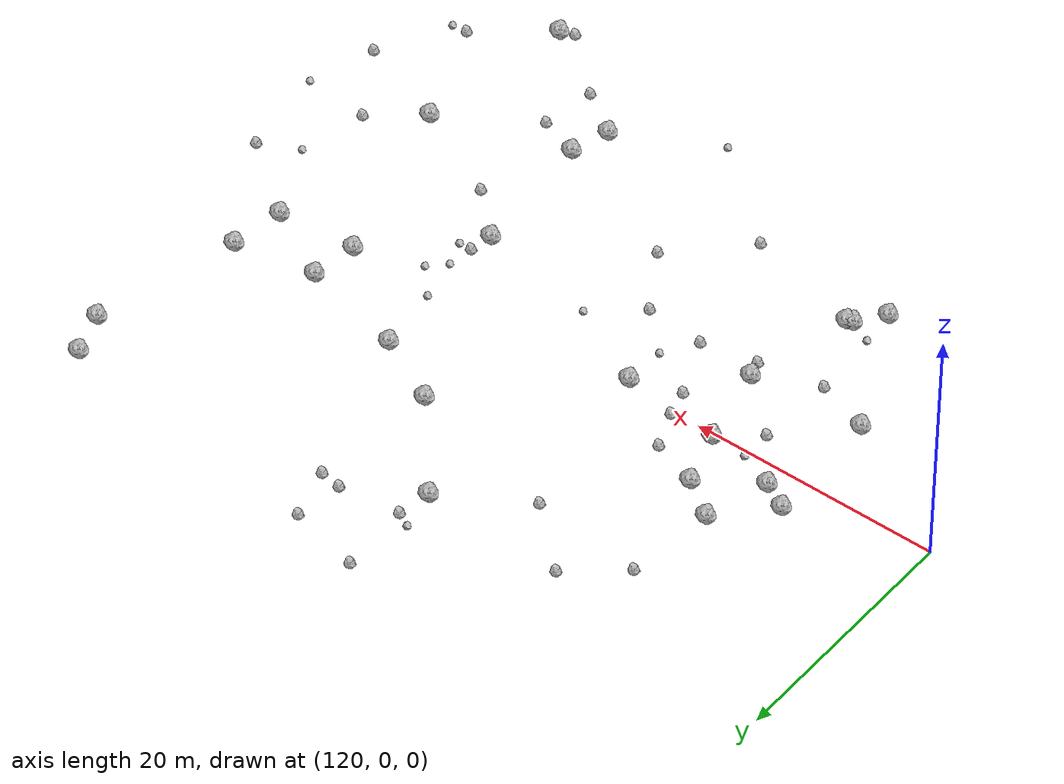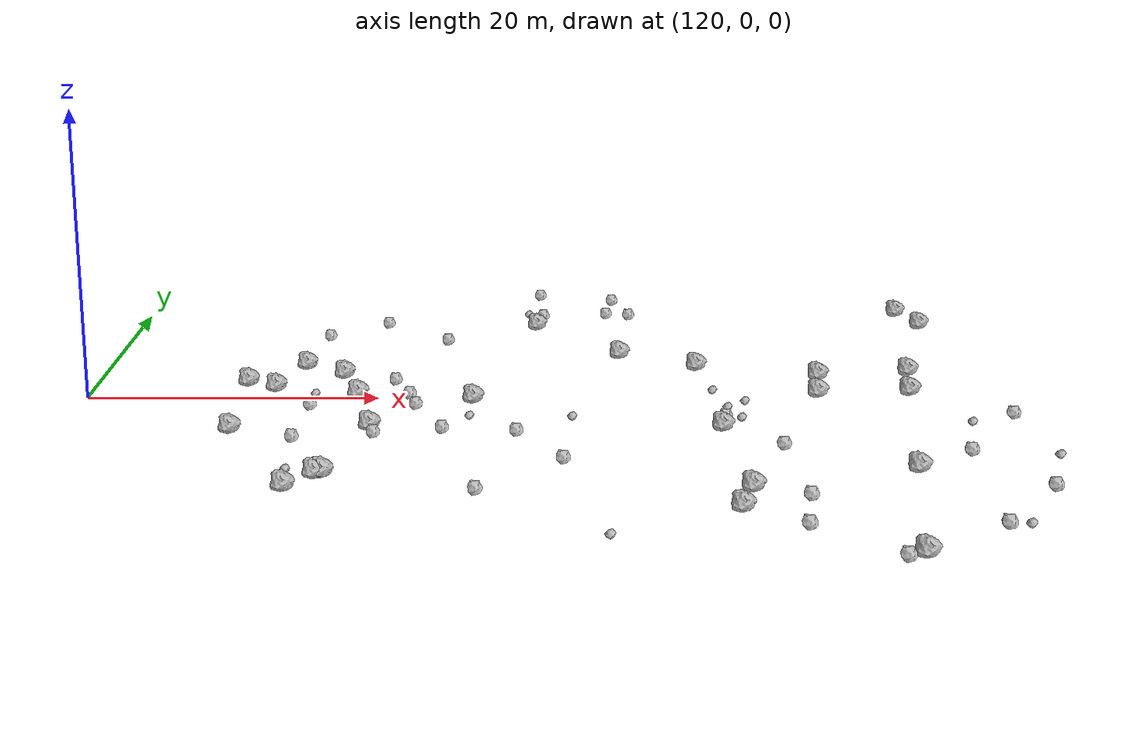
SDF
<sdf version="1.6">
 <world name="default">
  <include><uri>model://sun</uri></include>
  <model name="rock1_4_2">
   <include><uri>model://rock1</uri><pose>174.72796225187184 -13.37454622201346 0.5 0 0 0</pose></include>
  </model>
  <model name="rock1_4_3">
   <include><uri>model://rock1</uri><pose>137.99741705897068 -14.68515742351272 0.5 0 0 0</pose></include>
  </model>
  <model name="rock1_4_4">
   <include><uri>model://rock1</uri><pose>135.96340607001915 -16.979909476129162 0.5 0 0 0</pose></include>
  </model>
  <model name="rock1_4_5">
   <include><uri>model://rock1</uri><pose>180.12779075254042 17.787749142297933 0.5 0 0 0</pose></include>
  </model>
  <model name="rock1_4_6">
   <include><uri>model://rock1</uri><pose>139.99950422634282 -6.034107385449488 0.5 0 0 0</pose></include>
  </model>
  <model name="rock1_4_7">
   <include><uri>model://rock1</uri><pose>132.70091235716566 1.8687132217531186 0.5 0 0 0</pose></include>
  </model>
  <model name="rock1_4_8">
   <include><uri>model://rock1</uri><pose>163.19609496778997 -5.942205077800914 0.5 0 0 0</pose></include>
  </model>
  <model name="rock1_4_9">
   <include><uri>model://rock1</uri><pose>178.8681751186034 21.264221223056936 0.5 0 0 0</pose></include>
  </model>
  <model name="rock1_4_10">
   <include><uri>model://rock1</uri><pose>163.3130412980235 -19.912867471452074 0.5 0 0 0</pose></include>
  </model>
  <model name="rock1_4_11">
   <include><uri>model://rock1</uri><pose>146.52593700894485 -0.46272523927311227 0.5 0 0 0</pose></include>
  </model>
  <model name="rock1_4_12">
   <include><uri>model://rock1</uri><pose>164.19683045863545 -16.722089563151513 0.5 0 0 0</pose></include>
  </model>
  <model name="rock1_4_13">
   <include><uri>model://rock1</uri><pose>177.26609651164796 5.966276226220316 0.5 0 0 0</pose></include>
  </model>
  <model name="rock1_4_14">
   <include><uri>model://rock1</uri><pose>176.66705760819622 1.5397398195762655 0.5 0 0 0</pose></include>
  </model>
  <model name="rock1_4_15">
   <include><uri>model://rock1</uri><pose>130.5792158043728 3.072307980433351 0.5 0 0 0</pose></include>
  </model>
  <model name="rock1_4_16">
   <include><uri>model://rock1</uri><pose>172.84922584185244 -26.46048246299082 0.5 0 0 0</pose></include>
  </model>
  <model name="rock1_4_17">
   <include><uri>model://rock1</uri><pose>134.1798555428246 6.969557832239836 0.5 0 0 0</pose></include>
  </model>
  <model name="rock1_4_18">
   <include><uri>model://rock1</uri><pose>162.21092913462036 7.02297387385169 0.5 0 0 0</pose></include>
  </model>
  <model name="rock1_4_19">
   <include><uri>model://rock1</uri><pose>170.25737900658913 1.0644551960063033 0.5 0 0 0</pose></include>
  </model>
  <model name="rock1_4_20">
   <include><uri>model://rock1</uri><pose>156.74336326577998 9.83750510490249 0.5 0 0 0</pose></include>
  </model>
  <model name="rock1_4_21">
   <include><uri>model://rock1</uri><pose>138.54703948605626 0.45859907314950377 0.5 0 0 0</pose></include>
  </model>
  <model name="rock1_4_22">
   <include><uri>model://rock1</uri><pose>130.9439692509423 -6.748517168649656 0.5 0 0 0</pose></include>
  </model>
  <model name="rock1_4_23">
   <include><uri>model://rock1</uri><pose>170.71296210360538 4.88119007069875 0.5 0 0 0</pose></include>
  </model>
  <model name="rock1_4_24">
   <include><uri>model://rock1</uri><pose>137.11283432607345 4.8868493648414315 0.5 0 0 0</pose></include>
  </model>
  <model name="rock1_4_25">
   <include><uri>model://rock1</uri><pose>150.55889379668633 17.138938352190948 0.5 0 0 0</pose></include>
  </model>
  <model name="rock1_4_26">
   <include><uri>model://rock1</uri><pose>137.5640831487776 -14.840346189611616 0.5 0 0 0</pose></include>
  </model>
  <model name="rock2_4_0">
   <include><uri>model://rock2</uri><pose>171.68059242774135 -26.928359029467067 0.3 0 0 0</pose></include>
  </model>
  <model name="rock2_4_1">
   <include><uri>model://rock2</uri><pose>135.23349844203062 -8.330447450635766 0.3 0 0 0</pose></include>
  </model>
  <model name="rock2_4_2">
   <include><uri>model://rock2</uri><pose>135.55130767712464 -1.9922295160049224 0.3 0 0 0</pose></include>
  </model>
  <model name="rock2_4_3">
   <include><uri>model://rock2</uri><pose>150.9749337044749 19.784778135873395 0.3 0 0 0</pose></include>
  </model>
  <model name="rock2_4_4">
   <include><uri>model://rock2</uri><pose>140.3755160796421 -7.425867805325755 0.3 0 0 0</pose></include>
  </model>
  <model name="rock2_4_5">
   <include><uri>model://rock2</uri><pose>147.50459690632027 -17.367284299230782 0.3 0 0 0</pose></include>
  </model>
  <model name="rock2_4_6">
   <include><uri>model://rock2</uri><pose>142.10729246340236 0.43945213385795867 0.3 0 0 0</pose></include>
  </model>
  <model name="rock2_4_7">
   <include><uri>model://rock2</uri><pose>167.4764438911154 -18.00807113648268 0.3 0 0 0</pose></include>
  </model>
  <model name="rock2_4_8">
   <include><uri>model://rock2</uri><pose>140.86216799183177 3.477571544018687 0.3 0 0 0</pose></include>
  </model>
  <model name="rock2_4_9">
   <include><uri>model://rock2</uri><pose>144.78426021790824 -6.542635286201069 0.3 0 0 0</pose></include>
  </model>
  <model name="rock2_4_10">
   <include><uri>model://rock2</uri><pose>166.77850958897537 -9.401992478647085 0.3 0 0 0</pose></include>
  </model>
  <model name="rock2_4_11">
   <include><uri>model://rock2</uri><pose>166.84536680174753 -22.460431260585747 0.3 0 0 0</pose></include>
  </model>
  <model name="rock2_4_12">
   <include><uri>model://rock2</uri><pose>155.88846162706363 20.371188450172838 0.3 0 0 0</pose></include>
  </model>
  <model name="rock2_4_13">
   <include><uri>model://rock2</uri><pose>149.64838815040275 -7.019630102859743 0.3 0 0 0</pose></include>
  </model>
  <model name="rock2_4_14">
   <include><uri>model://rock2</uri><pose>178.22416379686962 -22.24508519599063 0.3 0 0 0</pose></include>
  </model>
  <model name="rock2_4_15">
   <include><uri>model://rock2</uri><pose>134.93526170054645 14.11634324964082 0.3 0 0 0</pose></include>
  </model>
  <model name="rock2_4_16">
   <include><uri>model://rock2</uri><pose>142.6897703744374 -1.7444136172858435 0.3 0 0 0</pose></include>
  </model>
  <model name="rock2_4_17">
   <include><uri>model://rock2</uri><pose>163.47257502938746 -4.062845632495527 0.3 0 0 0</pose></include>
  </model>
  <model name="rock2_4_18">
   <include><uri>model://rock2</uri><pose>152.74242185020591 -12.04927359260088 0.3 0 0 0</pose></include>
  </model>
  <model name="rock2_4_19">
   <include><uri>model://rock2</uri><pose>156.40594747712615 24.209052371303727 0.3 0 0 0</pose></include>
  </model>
  <model name="rock2_4_20">
   <include><uri>model://rock2</uri><pose>182.73605307966125 -3.2335240905721783 0.3 0 0 0</pose></include>
  </model>
  <model name="rock2_4_21">
   <include><uri>model://rock2</uri><pose>143.92994381938576 13.082396783803155 0.3 0 0 0</pose></include>
  </model>
  <model name="rock2_4_22">
   <include><uri>model://rock2</uri><pose>182.31892529170125 -16.370379387840508 0.3 0 0 0</pose></include>
  </model>
  <model name="rock2_4_23">
   <include><uri>model://rock2</uri><pose>150.6503642135463 25.644924085824144 0.3 0 0 0</pose></include>
  </model>
  <model name="rock2_4_24">
   <include><uri>model://rock2</uri><pose>178.52036581983043 -10.33091556134919 0.3 0 0 0</pose></include>
  </model>
  <model name="rock2_4_25">
   <include><uri>model://rock2</uri><pose>157.6403357710061 20.060364081271388 0.3 0 0 0</pose></include>
  </model>
  <model name="rock2_4_26">
   <include><uri>model://rock2</uri><pose>139.05681341679423 17.525498002020143 0.3 0 0 0</pose></include>
  </model>
  <model name="rock3_4_0">
   <include><uri>model://rock3</uri><pose>183.93845805722805 -10.972053733180015 0.2 0 0 0</pose></include>
  </model>
  <model name="rock3_4_1">
   <include><uri>model://rock3</uri><pose>164.53724188875063 -4.154073957486723 0.2 0 0 0</pose></include>
  </model>
  <model name="rock3_4_2">
   <include><uri>model://rock3</uri><pose>135.63912385100642 -14.079409849359939 0.2 0 0 0</pose></include>
  </model>
  <model name="rock3_4_3">
   <include><uri>model://rock3</uri><pose>179.68518276107417 -4.844600958581246 0.2 0 0 0</pose></include>
  </model>
  <model name="rock3_4_4">
   <include><uri>model://rock3</uri><pose>163.75451346356346 -2.0328672126312206 0.2 0 0 0</pose></include>
  </model>
  <model name="rock3_4_5">
   <include><uri>model://rock3</uri><pose>149.81472488095773 20.330076123568674 0.2 0 0 0</pose></include>
  </model>
  <model name="rock3_4_6">
   <include><uri>model://rock3</uri><pose>153.2792307736783 -4.072189169141154 0.2 0 0 0</pose></include>
  </model>
  <model name="rock3_4_7">
   <include><uri>model://rock3</uri><pose>165.02585696963 -0.7586781720895033 0.2 0 0 0</pose></include>
  </model>
  <model name="rock3_4_8">
   <include><uri>model://rock3</uri><pose>155.46127165705968 -24.139807259066846 0.2 0 0 0</pose></include>
  </model>
  <model name="rock3_4_9">
   <include><uri>model://rock3</uri><pose>162.97113326890855 1.5270376228784102 0.2 0 0 0</pose></include>
  </model>
  <model name="rock3_4_10">
   <include><uri>model://rock3</uri><pose>146.4246254448675 -4.007690706417247 0.2 0 0 0</pose></include>
  </model>
  <model name="rock3_4_11">
   <include><uri>model://rock3</uri><pose>135.57665075560644 0.48568689499288453 0.2 0 0 0</pose></include>
  </model>
  <model name="rock3_4_12">
   <include><uri>model://rock3</uri><pose>179.50162628878138 -22.25704275357809 0.2 0 0 0</pose></include>
  </model>
 </world>
</sdf>
